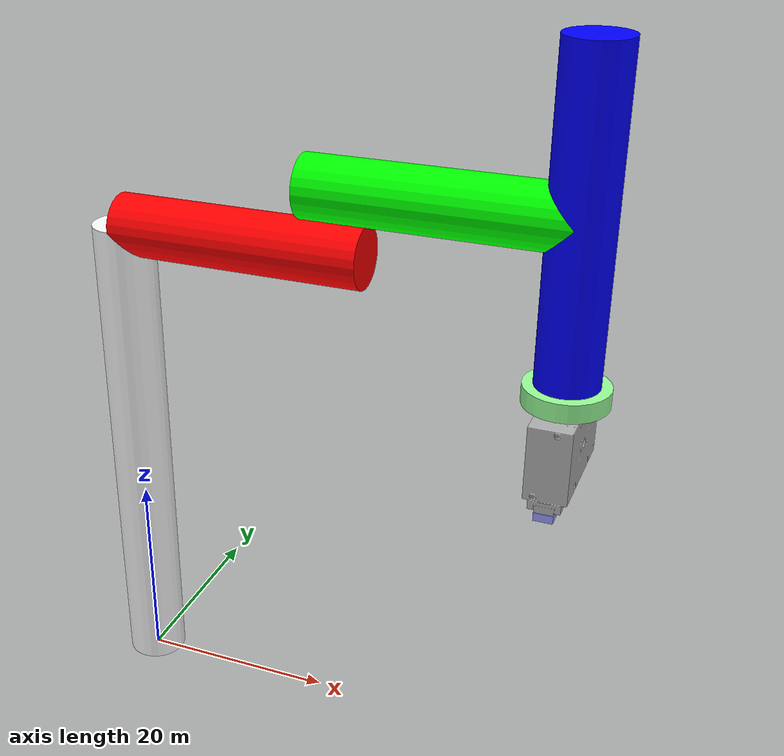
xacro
<?xml version="1.0"?>
<robot xmlns:xacro="http://www.ros.org/wiki/xacro" name="scara_robot">
    <xacro:arg name="initial_positions_file" default="initial_positions.yaml" />

    <!-- Import scara_robot urdf file -->
    <xacro:include filename="$(find scara_robot_description)/urdf/scara_robot.urdf.xacro" />

    <!-- Import control_xacro -->
    <xacro:include filename="scara_robot.ros2_control.xacro" />

    <xacro:scara_robot_ros2_control name="FakeSystem" initial_positions_file="$(arg initial_positions_file)"/>

</robot>

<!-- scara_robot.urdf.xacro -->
<robot name="scara_robot" xmlns:xacro="http://www.ros.org/wiki/xacro">
  <xacro:arg name="gripper_type" default="tayo"/>
	<xacro:property name="gripper_type" value="$(arg gripper_type)" />
	<xacro:property name="scale_value" value="100.0"/>
  <!--link-->
  <link name="base_link"/>
  <link name="link1">
    <collision>
      <origin rpy="0 0 0" xyz="0.0 0.0 ${scale_value*0.25}"/>
      <geometry>
        <cylinder length="${scale_value*0.5}" radius="${scale_value*0.03}"/>
      </geometry>
    </collision>
    <visual>
      <origin rpy="0 0 0" xyz="0.0 0.0 ${scale_value*0.25}"/>
      <geometry>
        <cylinder length="${scale_value*0.5}" radius="${scale_value*0.03}"/>
      </geometry>
      <material name="material_color_link1">
        <color rgba="1 1 1 1"/>
      </material>
    </visual>

  </link>
  <link name="link2">
    <collision>
      <origin rpy="0 0 0" xyz="0.0 0.0 ${scale_value*0.125}"/>
      <geometry>
        <cylinder length="${scale_value*0.25}" radius="${scale_value*0.03}"/>
      </geometry>
    </collision>
    <visual>
      <origin rpy="0 0 0" xyz="0.0 0.0 ${scale_value*0.125}"/>
      <geometry>
        <cylinder length="${scale_value*0.25}" radius="${scale_value*0.03}"/>
      </geometry>
      <material name="material_color_link2">
        <color rgba="1 0 0 1"/>
      </material>
    </visual>

  </link>
  <link name="link3">
    <collision>
      <origin rpy="0 0 0" xyz="0.0 0.0 ${scale_value*0.125}"/>
      <geometry>
        <cylinder length="${scale_value*0.25}" radius="${scale_value*0.03}"/>
      </geometry>
    </collision>
    <visual>
      <origin rpy="0 0 0" xyz="0.0 0.0 ${scale_value*0.125}"/>
      <geometry>
        <cylinder length="${scale_value*0.25}" radius="${scale_value*0.03}"/>
      </geometry>
      <material name="material_color_link3">
        <color rgba="0 1 0 1"/>
      </material>
    </visual>

  </link>
  <link name="link4">
    <collision>
      <origin rpy="0 0 0" xyz="0.0 0.0 ${scale_value*0.15}"/>
      <geometry>
        <cylinder length="${scale_value*0.3}" radius="${scale_value*0.03}"/>
      </geometry>
    </collision>
    <visual>
      <origin rpy="0 0 0" xyz="0.0 0.0 ${scale_value*0.15}"/>
      <geometry>
        <cylinder length="${scale_value*0.3}" radius="${scale_value*0.03}"/>
      </geometry>
      <material name="material_color_link4">
        <color rgba="0 0 1 1"/>
      </material>
    </visual>

  </link>
  <link name="link5">
    <collision>
      <origin rpy="0 0 0" xyz="0.0 0.0 ${scale_value*0.005}"/>
      <geometry>
        <cylinder length="${scale_value*0.01}" radius="${scale_value*0.03}"/>
      </geometry>
    </collision>
    <visual>
      <origin rpy="0 0 0" xyz="0.0 0.0 ${scale_value*0.005}"/>
      <geometry>
        <cylinder length="${scale_value*0.01}" radius="${scale_value*0.03}"/>
      </geometry>
      <material name="material_color_link5">
        <color rgba="1 1 0 1"/>
      </material>
    </visual>

    </link>
    <link name="tool0"/>
  <!--joint-->
  <joint name="base_joint" type="fixed">
    <parent link="base_link"/>
    <child link="link1"/>
    <origin rpy="0 0 0" xyz="0 0 0"/>
  </joint>
  <joint name="joint1" type="revolute">
    <parent link="link1"/>
    <child link="link2"/>
    <origin rpy="0 1.57079632679 0" xyz="0.0 0.0 ${scale_value*0.5}"/>
    <limit effort="10" lower="-3.14159265359" upper="3.14159265359" velocity="18.8495559215"/>
  </joint>
  <joint name="joint2" type="revolute">
    <parent link="link2"/>
    <child link="link3"/>
    <origin rpy="0 0 0" xyz="${scale_value*-0.06} 0.0 ${scale_value*0.19}"/>
    <limit effort="10" lower="-3.14159265359" upper="3.14159265359" velocity="18.8495559215"/>
  </joint>
  <joint name="joint3" type="prismatic">
    <parent link="link3"/>
    <child link="link4"/>
    <origin rpy="0 1.57079632679 0" xyz="${scale_value*-0.15} 0.0 ${scale_value*0.25}"/>
    <axis xyz="0 0 1"/>
    <limit effort="100" lower="${scale_value*-0.15}" upper="${scale_value*0.15}" velocity="1.1"/>
  </joint>
  <joint name="joint4" type="revolute">
    <parent link="link4"/>
    <child link="link5"/>
    <origin rpy="0 0 0" xyz="0.0 0.0 ${scale_value*0.3}"/>
    <axis xyz="0 0 1"/>
    <limit effort="10" lower="-6.28318530718" upper="6.28318530718" velocity="18.8495559215"/>
  </joint>
  <joint name="tool_joint" type="fixed">
    <origin rpy="0.0 0.0 0.0" xyz="0.0 0.0 0.01"/>
    <parent link="link5"/>
    <child link="tool0"/>
  </joint>
  <xacro:if value="${gripper_type != 'none'}">
		<xacro:include filename="$(find scara_robot_description)/urdf/${gripper_type}.urdf.xacro" />
	</xacro:if>
</robot>

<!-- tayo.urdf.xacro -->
<robot name="scara_robot" xmlns:xacro="http://www.ros.org/wiki/xacro">

	<link name="gripper_base">
		<visual>
			<origin rpy="0 0 1.57079632679" xyz="0 0 ${scale_value*0.07222}"/>
			<geometry>
				<mesh filename="package://scara_robot_description/meshes/visual/tool/ESG1-FS-2840.dae" scale="${scale_value} ${scale_value} ${scale_value}"/>
			</geometry>
		</visual>
		<collision>
			<origin rpy="0 0 1.57079632679" xyz="0 0 ${scale_value*0.042135}"/>
			<geometry>
				<box size="${scale_value*0.11095} ${scale_value*0.04021} ${scale_value*0.08427}"/>
			</geometry>
		</collision>
		<inertial>
			<mass value="1"/>
			<origin rpy="0.000000 0.000000 0.000000" xyz="0.000000 0.000000 0.000000"/>
			<inertia ixx="1" ixy="0" ixz="0" iyy="1" iyz="0" izz="1"/>
		</inertial>
	</link>

	<link name="robot_gripper_interface">
		<visual>
			<origin rpy="0 0 0" xyz="0 0 ${scale_value*0.00902}"/>
			<geometry>
				<cylinder length="${scale_value*0.01804}" radius="${scale_value*0.04}"/>
			</geometry>
			<material name="material_color_robot_gripper_interface">
				<color rgba="0.6 1 0.6 1"/>
			</material>
		</visual>
		<collision>
			<origin rpy="0 0 0" xyz="0 0 ${scale_value*0.00902}"/>
			<geometry>
				<cylinder length="${scale_value*0.01804}" radius="${scale_value*0.04}"/>
			</geometry>
		</collision>
	</link>

	<joint name="robot_to_gripper" type="fixed">
		<parent link="tool0"/>
		<child link="robot_gripper_interface"/>
		<origin rpy="0 0 0" xyz="0 0 0"/>
	</joint>

	<joint name="joint_gripper_base" type="fixed">
		<parent link="robot_gripper_interface"/>
		<child link="gripper_base"/>
		<origin rpy="0.000000 0.000000 0.000000" xyz="0.000000 0.000000 ${scale_value*0.01804}"/>
	</joint>

	<link name="left_finger">
		<visual>
		<origin rpy="0 0 0" xyz="0 0 ${scale_value*0.004045}"/>
			<geometry>
				<box size="${scale_value*0.03573} ${scale_value*0.01813} ${scale_value*0.00809}"/>
			</geometry>
			<material name="material_color_left_claw">
				<color rgba="0.6 0.6 1 1"/>
			</material>
		</visual>
		<collision>
			<origin rpy="0 0 0" xyz="0 0 ${scale_value*0.004045}"/>
			<geometry>
				<box size="${scale_value*0.03573} ${scale_value*0.01813} ${scale_value*0.00809}"/>
			</geometry>
		</collision>
	</link>
	<joint name="joint_gripper" type="prismatic">
		<parent link="gripper_base"/>
		<child link="left_finger"/>
		<origin rpy="0.000000 0.000000 1.57079632679" xyz="0 ${scale_value*0.036789} ${scale_value*0.08427}"/>
		<axis xyz="-1.000000 0.000000 -0.000000"/>
		<limit effort="${scale_value * 200000}" lower="0.000000" upper="${scale_value * 0.018819}" velocity="${scale_value * 18.000000}"/>
		<dynamics damping="0" friction="0"/>
	</joint>

	<link name="left_finger_tip">
		<visual>
		<origin rpy="0 0 0" xyz="0 0 0"/>
			<geometry>
				<box size="${scale_value*0.00610} ${scale_value*0.01260} ${scale_value*0.0055}"/>
			</geometry>
			<material name="material_color_left_finger_tip">
				<color rgba="0.6 0.6 1 1"/>
			</material>
		</visual>
		<collision>
			<origin rpy="0 0 0" xyz="0 0 0"/>
			<geometry>
				<box size="${scale_value*0.00610} ${scale_value*0.01260} ${scale_value*0.0055}"/>
			</geometry>
		</collision>
	</link>

	<joint name="gripper_left_graspping_tip" type="fixed">
		<parent link="left_finger"/>
		<child link="left_finger_tip"/>
		<origin rpy="0.000000 0.000000 0" xyz="-${scale_value*0.0148} 0 ${scale_value*0.00809}"/>
	</joint>

	<link name="right_finger">
		<collision>
			<origin rpy="0 0 0" xyz="0 0 ${scale_value*0.004045}"/>
			<geometry>
				<box size="${scale_value*0.03573} ${scale_value*0.01813} ${scale_value*0.00809}"/>
			</geometry>
		</collision>
		<visual>
			<origin rpy="0 0 0" xyz="0 0 ${scale_value*0.004045}"/>
			<geometry>
				<box size="${scale_value*0.03573} ${scale_value*0.01813} ${scale_value*0.00809}"/>
			</geometry>
			<material name="material_color_right_claw">
				<color rgba="0.6 0.6 1 1"/>
			</material>
		</visual>
	</link>
	<joint name="joint_gripper_mimic" type="prismatic">
		<parent link="gripper_base"/>
		<child link="right_finger"/>
		<mimic joint="joint_gripper" multiplier="-1.000000" offset="0.000000"/>
		<origin rpy="0.000000 0.000000 1.57079632679" xyz="0 -${scale_value*0.036789} ${scale_value*0.08427}"/>
		<axis xyz="-1.000000 0.000000 -0.000000"/>
		<limit effort="${scale_value * 200000}" lower="-${scale_value * 0.018819}" upper="0.000000" velocity="${scale_value * 18.00000}"/>
		<dynamics damping="0" friction="0"/>
	</joint>

	<link name="right_finger_tip">
		<visual>
		<origin rpy="0 0 0" xyz="0 0 0"/>
			<geometry>
				<box size="${scale_value*0.00610} ${scale_value*0.01260} ${scale_value*0.0055}"/>
			</geometry>
			<material name="material_color_right_finger_tip">
				<color rgba="0.6 0.6 1 1"/>
			</material>
		</visual>
		<collision>
			<origin rpy="0 0 0" xyz="0 0 0"/>
			<geometry>
				<box size="${scale_value*0.00610} ${scale_value*0.01260} ${scale_value*0.0055}"/>
			</geometry>
		</collision>
	</link>

	<joint name="gripper_right_graspping_tip" type="fixed">
		<parent link="right_finger"/>
		<child link="right_finger_tip"/>
		<origin rpy="0.000000 0.000000 0" xyz="${scale_value*0.0148} 0 ${scale_value*0.00809}"/>
	</joint>

	<link name="gripper_tip"/>
	<joint name="joint_tip" type="fixed">
		<parent link="gripper_base"/>
		<child link="gripper_tip"/>
		<origin rpy="0.000000 0.000000 0.000000" xyz="0.000000 0.000000 ${scale_value*0.09511}"/>
	</joint>

</robot>
